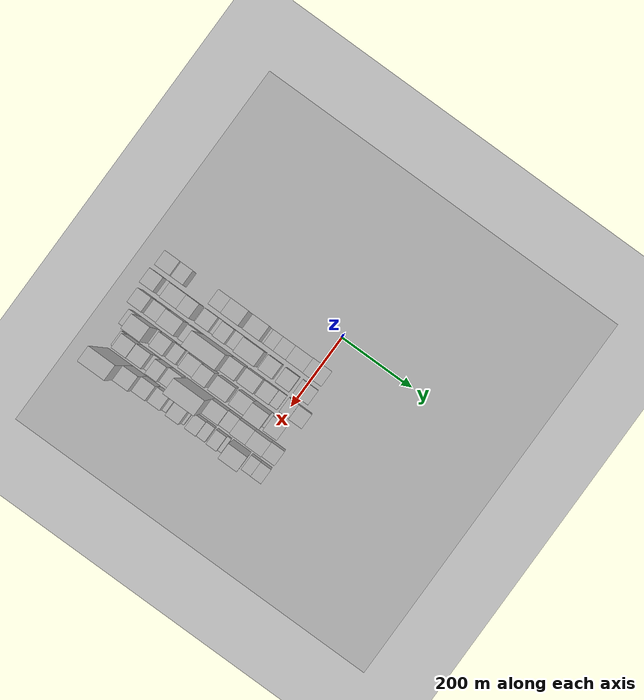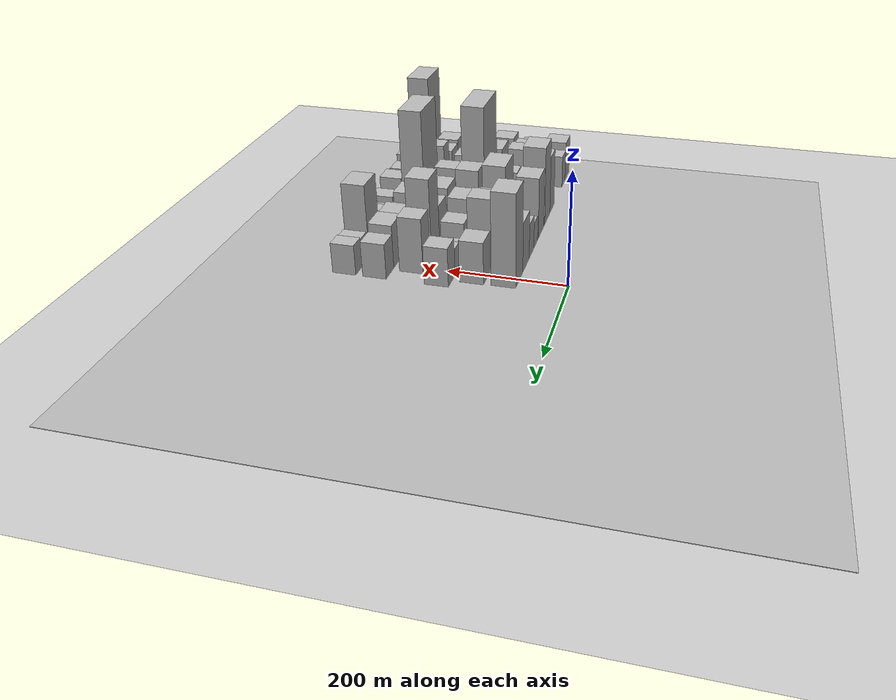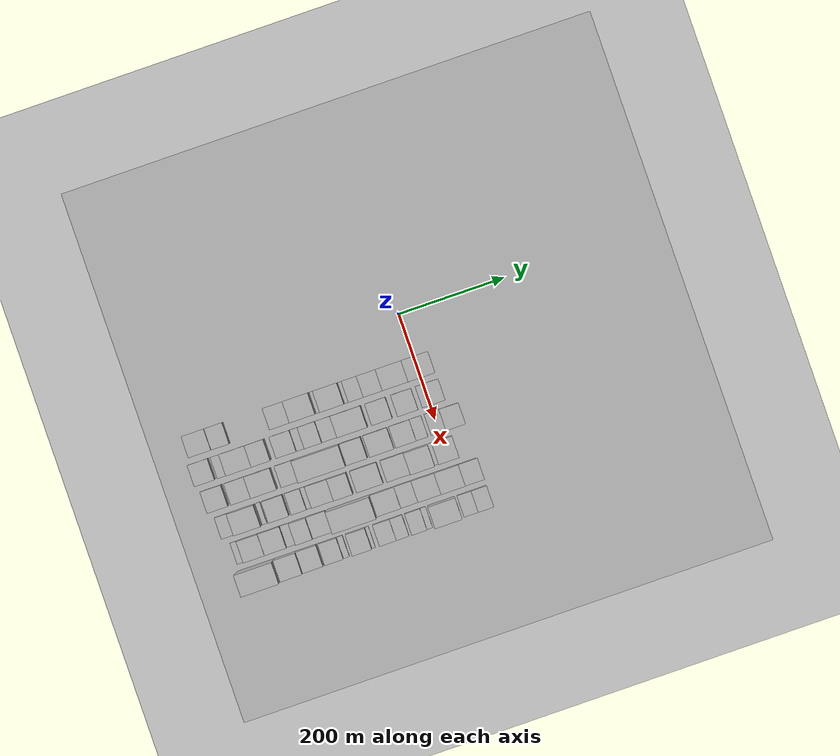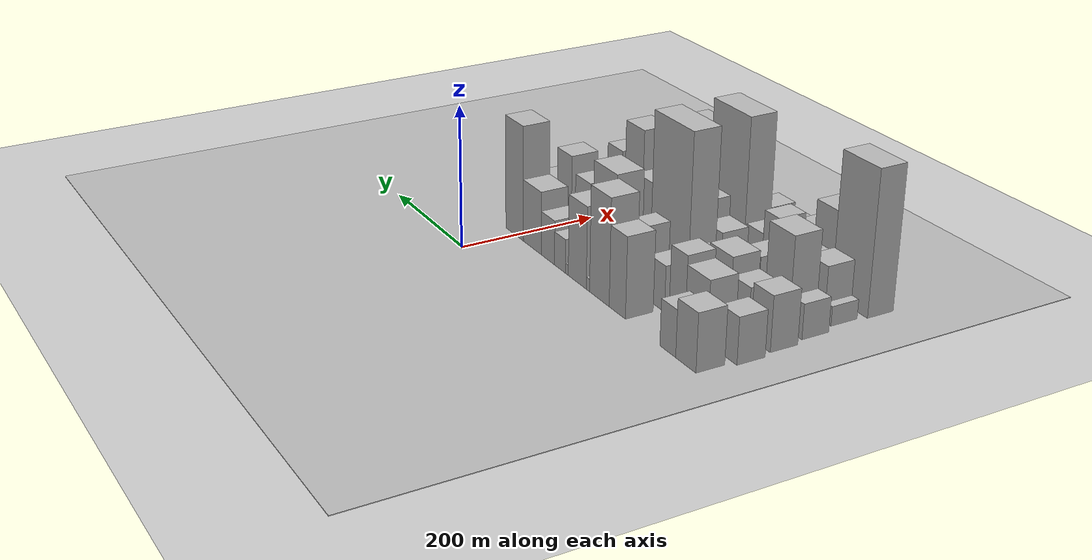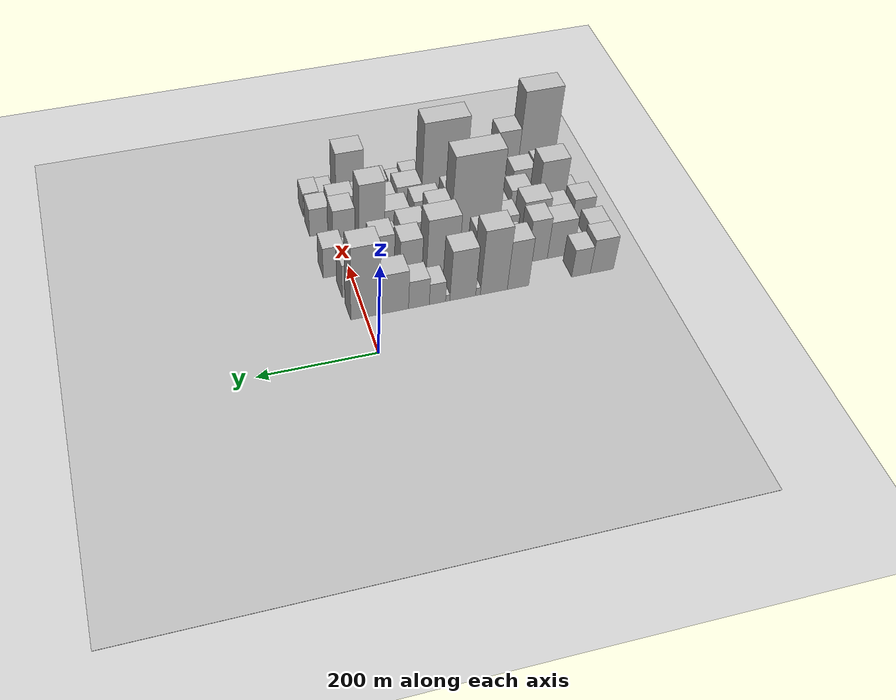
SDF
<sdf version="1.6">
 <world name="default">
  <include><name>ground_plane_1</name><uri>model://HANNAS_ground_plane</uri></include>
  <include>
   <name>ground_plane_2</name>
   <uri>model://HANNAS_ground_plane</uri>
   <pose>100 0 0  0 0 0</pose>
  </include>
  <model name="building_12">
   <static>1</static>
   <pose>100.0000 -414.7524 0 0.000000 0.000000 0.000000</pose>
   <link name="link">
    <pose>0 0 39.00 0 0 0</pose>
    <collision name="collision"><geometry><box><size>40.0000 42.1300 78.0000</size></box></geometry></collision>
    <visual name="visual">
     <cast_shadows>0</cast_shadows>
     <geometry><box><size>40.0000 42.1300 78.0000</size></box></geometry>
     <material>
      <script>
       <uri>model://HANNAS_wall/materials/scripts</uri>
       <uri>model://HANNAS_wall/materials/textures</uri>
       <name>vrc/HANNAS_wall</name>
      </script>
     </material>
    </visual>
   </link>
  </model>
  <model name="building_13">
   <static>1</static>
   <pose>100.0000 -376.7579 0 0.000000 0.000000 0.000000</pose>
   <link name="link">
    <pose>0 0 31.50 0 0 0</pose>
    <collision name="collision"><geometry><box><size>40.0000 33.8590 63.0000</size></box></geometry></collision>
    <visual name="visual">
     <cast_shadows>0</cast_shadows>
     <geometry><box><size>40.0000 33.8590 63.0000</size></box></geometry>
     <material>
      <script>
       <uri>model://HANNAS_wall/materials/scripts</uri>
       <uri>model://HANNAS_wall/materials/textures</uri>
       <name>vrc/HANNAS_wall</name>
      </script>
     </material>
    </visual>
   </link>
  </model>
  <model name="building_14">
   <static>1</static>
   <pose>100.0000 -263.6347 0 0.000000 0.000000 0.000000</pose>
   <link name="link">
    <pose>0 0 55.50 0 0 0</pose>
    <collision name="collision"><geometry><box><size>40.0000 38.1291 111.0000</size></box></geometry></collision>
    <visual name="visual">
     <cast_shadows>0</cast_shadows>
     <geometry><box><size>40.0000 38.1291 111.0000</size></box></geometry>
     <material>
      <script>
       <uri>model://HANNAS_wall/materials/scripts</uri>
       <uri>model://HANNAS_wall/materials/textures</uri>
       <name>vrc/HANNAS_wall</name>
      </script>
     </material>
    </visual>
   </link>
  </model>
  <model name="building_15">
   <static>1</static>
   <pose>100.0000 -220.7925 0 0.000000 0.000000 0.000000</pose>
   <link name="link">
    <pose>0 0 73.50 0 0 0</pose>
    <collision name="collision"><geometry><box><size>40.0000 47.5555 147.0000</size></box></geometry></collision>
    <visual name="visual">
     <cast_shadows>0</cast_shadows>
     <geometry><box><size>40.0000 47.5555 147.0000</size></box></geometry>
     <material>
      <script>
       <uri>model://HANNAS_wall/materials/scripts</uri>
       <uri>model://HANNAS_wall/materials/textures</uri>
       <name>vrc/HANNAS_wall</name>
      </script>
     </material>
    </visual>
   </link>
  </model>
  <model name="building_16">
   <static>1</static>
   <pose>100.0000 -192.9283 0 0.000000 0.000000 0.000000</pose>
   <link name="link">
    <pose>0 0 9.00 0 0 0</pose>
    <collision name="collision"><geometry><box><size>40.0000 8.1729 18.0000</size></box></geometry></collision>
    <visual name="visual">
     <cast_shadows>0</cast_shadows>
     <geometry><box><size>40.0000 8.1729 18.0000</size></box></geometry>
     <material>
      <script>
       <uri>model://HANNAS_wall/materials/scripts</uri>
       <uri>model://HANNAS_wall/materials/textures</uri>
       <name>vrc/HANNAS_wall</name>
      </script>
     </material>
    </visual>
   </link>
  </model>
  <model name="building_17">
   <static>1</static>
   <pose>100.0000 -166.1689 0 0.000000 0.000000 0.000000</pose>
   <link name="link">
    <pose>0 0 57.00 0 0 0</pose>
    <collision name="collision"><geometry><box><size>40.0000 45.3458 114.0000</size></box></geometry></collision>
    <visual name="visual">
     <cast_shadows>0</cast_shadows>
     <geometry><box><size>40.0000 45.3458 114.0000</size></box></geometry>
     <material>
      <script>
       <uri>model://HANNAS_wall/materials/scripts</uri>
       <uri>model://HANNAS_wall/materials/textures</uri>
       <name>vrc/HANNAS_wall</name>
      </script>
     </material>
    </visual>
   </link>
  </model>
  <model name="building_18">
   <static>1</static>
   <pose>100.0000 -139.8257 0 0.000000 0.000000 0.000000</pose>
   <link name="link">
    <pose>0 0 7.50 0 0 0</pose>
    <collision name="collision"><geometry><box><size>40.0000 7.3405 15.0000</size></box></geometry></collision>
    <visual name="visual">
     <cast_shadows>0</cast_shadows>
     <geometry><box><size>40.0000 7.3405 15.0000</size></box></geometry>
     <material>
      <script>
       <uri>model://HANNAS_wall/materials/scripts</uri>
       <uri>model://HANNAS_wall/materials/textures</uri>
       <name>vrc/HANNAS_wall</name>
      </script>
     </material>
    </visual>
   </link>
  </model>
  <model name="building_19">
   <static>1</static>
   <pose>100.0000 -121.9752 0 0.000000 0.000000 0.000000</pose>
   <link name="link">
    <pose>0 0 24.00 0 0 0</pose>
    <collision name="collision"><geometry><box><size>40.0000 28.3605 48.0000</size></box></geometry></collision>
    <visual name="visual">
     <cast_shadows>0</cast_shadows>
     <geometry><box><size>40.0000 28.3605 48.0000</size></box></geometry>
     <material>
      <script>
       <uri>model://HANNAS_wall/materials/scripts</uri>
       <uri>model://HANNAS_wall/materials/textures</uri>
       <name>vrc/HANNAS_wall</name>
      </script>
     </material>
    </visual>
   </link>
  </model>
  <model name="building_20">
   <static>1</static>
   <pose>100.0000 -89.8973 0 0.000000 0.000000 0.000000</pose>
   <link name="link">
    <pose>0 0 31.50 0 0 0</pose>
    <collision name="collision"><geometry><box><size>40.0000 35.7953 63.0000</size></box></geometry></collision>
    <visual name="visual">
     <cast_shadows>0</cast_shadows>
     <geometry><box><size>40.0000 35.7953 63.0000</size></box></geometry>
     <material>
      <script>
       <uri>model://HANNAS_wall/materials/scripts</uri>
       <uri>model://HANNAS_wall/materials/textures</uri>
       <name>vrc/HANNAS_wall</name>
      </script>
     </material>
    </visual>
   </link>
  </model>
  <model name="building_21">
   <static>1</static>
   <pose>100.0000 -47.6946 0 0.000000 0.000000 0.000000</pose>
   <link name="link">
    <pose>0 0 45.00 0 0 0</pose>
    <collision name="collision"><geometry><box><size>40.0000 48.6101 90.0000</size></box></geometry></collision>
    <visual name="visual">
     <cast_shadows>0</cast_shadows>
     <geometry><box><size>40.0000 48.6101 90.0000</size></box></geometry>
     <material>
      <script>
       <uri>model://HANNAS_wall/materials/scripts</uri>
       <uri>model://HANNAS_wall/materials/textures</uri>
       <name>vrc/HANNAS_wall</name>
      </script>
     </material>
    </visual>
   </link>
  </model>
  <model name="building_22">
   <static>1</static>
   <pose>100.0000 1.5828 0 0.000000 0.000000 0.000000</pose>
   <link name="link">
    <pose>0 0 82.50 0 0 0</pose>
    <collision name="collision"><geometry><box><size>40.0000 49.9448 165.0000</size></box></geometry></collision>
    <visual name="visual">
     <cast_shadows>0</cast_shadows>
     <geometry><box><size>40.0000 49.9448 165.0000</size></box></geometry>
     <material>
      <script>
       <uri>model://HANNAS_wall/materials/scripts</uri>
       <uri>model://HANNAS_wall/materials/textures</uri>
       <name>vrc/HANNAS_wall</name>
      </script>
     </material>
    </visual>
   </link>
  </model>
  <model name="building_61">
   <static>1</static>
   <pose>152.0000 -424.2948 0 0.000000 0.000000 0.000000</pose>
   <link name="link">
    <pose>0 0 31.50 0 0 0</pose>
    <collision name="collision"><geometry><box><size>40.0000 37.7740 63.0000</size></box></geometry></collision>
    <visual name="visual">
     <cast_shadows>0</cast_shadows>
     <geometry><box><size>40.0000 37.7740 63.0000</size></box></geometry>
     <material>
      <script>
       <uri>model://HANNAS_wall/materials/scripts</uri>
       <uri>model://HANNAS_wall/materials/textures</uri>
       <name>vrc/HANNAS_wall</name>
      </script>
     </material>
    </visual>
   </link>
  </model>
  <model name="building_62">
   <static>1</static>
   <pose>152.0000 -392.3795 0 0.000000 0.000000 0.000000</pose>
   <link name="link">
    <pose>0 0 16.50 0 0 0</pose>
    <collision name="collision"><geometry><box><size>40.0000 18.0567 33.0000</size></box></geometry></collision>
    <visual name="visual">
     <cast_shadows>0</cast_shadows>
     <geometry><box><size>40.0000 18.0567 33.0000</size></box></geometry>
     <material>
      <script>
       <uri>model://HANNAS_wall/materials/scripts</uri>
       <uri>model://HANNAS_wall/materials/textures</uri>
       <name>vrc/HANNAS_wall</name>
      </script>
     </material>
    </visual>
   </link>
  </model>
  <model name="building_63">
   <static>1</static>
   <pose>152.0000 -359.3087 0 0.000000 0.000000 0.000000</pose>
   <link name="link">
    <pose>0 0 42.00 0 0 0</pose>
    <collision name="collision"><geometry><box><size>40.0000 48.0849 84.0000</size></box></geometry></collision>
    <visual name="visual">
     <cast_shadows>0</cast_shadows>
     <geometry><box><size>40.0000 48.0849 84.0000</size></box></geometry>
     <material>
      <script>
       <uri>model://HANNAS_wall/materials/scripts</uri>
       <uri>model://HANNAS_wall/materials/textures</uri>
       <name>vrc/HANNAS_wall</name>
      </script>
     </material>
    </visual>
   </link>
  </model>
  <model name="building_64">
   <static>1</static>
   <pose>152.0000 -317.4862 0 0.000000 0.000000 0.000000</pose>
   <link name="link">
    <pose>0 0 48.00 0 0 0</pose>
    <collision name="collision"><geometry><box><size>40.0000 35.5601 96.0000</size></box></geometry></collision>
    <visual name="visual">
     <cast_shadows>0</cast_shadows>
     <geometry><box><size>40.0000 35.5601 96.0000</size></box></geometry>
     <material>
      <script>
       <uri>model://HANNAS_wall/materials/scripts</uri>
       <uri>model://HANNAS_wall/materials/textures</uri>
       <name>vrc/HANNAS_wall</name>
      </script>
     </material>
    </visual>
   </link>
  </model>
  <model name="building_65">
   <static>1</static>
   <pose>152.0000 -270.8084 0 0.000000 0.000000 0.000000</pose>
   <link name="link">
    <pose>0 0 31.50 0 0 0</pose>
    <collision name="collision"><geometry><box><size>40.0000 37.7956 63.0000</size></box></geometry></collision>
    <visual name="visual">
     <cast_shadows>0</cast_shadows>
     <geometry><box><size>40.0000 37.7956 63.0000</size></box></geometry>
     <material>
      <script>
       <uri>model://HANNAS_wall/materials/scripts</uri>
       <uri>model://HANNAS_wall/materials/textures</uri>
       <name>vrc/HANNAS_wall</name>
      </script>
     </material>
    </visual>
   </link>
  </model>
  <model name="building_66">
   <static>1</static>
   <pose>152.0000 -243.9761 0 0.000000 0.000000 0.000000</pose>
   <link name="link">
    <pose>0 0 15.00 0 0 0</pose>
    <collision name="collision"><geometry><box><size>40.0000 15.8689 30.0000</size></box></geometry></collision>
    <visual name="visual">
     <cast_shadows>0</cast_shadows>
     <geometry><box><size>40.0000 15.8689 30.0000</size></box></geometry>
     <material>
      <script>
       <uri>model://HANNAS_wall/materials/scripts</uri>
       <uri>model://HANNAS_wall/materials/textures</uri>
       <name>vrc/HANNAS_wall</name>
      </script>
     </material>
    </visual>
   </link>
  </model>
  <model name="building_67">
   <static>1</static>
   <pose>152.0000 -219.7628 0 0.000000 0.000000 0.000000</pose>
   <link name="link">
    <pose>0 0 46.50 0 0 0</pose>
    <collision name="collision"><geometry><box><size>40.0000 32.5576 93.0000</size></box></geometry></collision>
    <visual name="visual">
     <cast_shadows>0</cast_shadows>
     <geometry><box><size>40.0000 32.5576 93.0000</size></box></geometry>
     <material>
      <script>
       <uri>model://HANNAS_wall/materials/scripts</uri>
       <uri>model://HANNAS_wall/materials/textures</uri>
       <name>vrc/HANNAS_wall</name>
      </script>
     </material>
    </visual>
   </link>
  </model>
  <model name="building_68">
   <static>1</static>
   <pose>152.0000 -188.7724 0 0.000000 0.000000 0.000000</pose>
   <link name="link">
    <pose>0 0 25.50 0 0 0</pose>
    <collision name="collision"><geometry><box><size>40.0000 29.4231 51.0000</size></box></geometry></collision>
    <visual name="visual">
     <cast_shadows>0</cast_shadows>
     <geometry><box><size>40.0000 29.4231 51.0000</size></box></geometry>
     <material>
      <script>
       <uri>model://HANNAS_wall/materials/scripts</uri>
       <uri>model://HANNAS_wall/materials/textures</uri>
       <name>vrc/HANNAS_wall</name>
      </script>
     </material>
    </visual>
   </link>
  </model>
  <model name="building_69">
   <static>1</static>
   <pose>152.0000 -145.8640 0 0.000000 0.000000 0.000000</pose>
   <link name="link">
    <pose>0 0 70.50 0 0 0</pose>
    <collision name="collision"><geometry><box><size>40.0000 56.3937 141.0000</size></box></geometry></collision>
    <visual name="visual">
     <cast_shadows>0</cast_shadows>
     <geometry><box><size>40.0000 56.3937 141.0000</size></box></geometry>
     <material>
      <script>
       <uri>model://HANNAS_wall/materials/scripts</uri>
       <uri>model://HANNAS_wall/materials/textures</uri>
       <name>vrc/HANNAS_wall</name>
      </script>
     </material>
    </visual>
   </link>
  </model>
  <model name="building_70">
   <static>1</static>
   <pose>152.0000 -90.4046 0 0.000000 0.000000 0.000000</pose>
   <link name="link">
    <pose>0 0 52.50 0 0 0</pose>
    <collision name="collision"><geometry><box><size>40.0000 38.5252 105.0000</size></box></geometry></collision>
    <visual name="visual">
     <cast_shadows>0</cast_shadows>
     <geometry><box><size>40.0000 38.5252 105.0000</size></box></geometry>
     <material>
      <script>
       <uri>model://HANNAS_wall/materials/scripts</uri>
       <uri>model://HANNAS_wall/materials/textures</uri>
       <name>vrc/HANNAS_wall</name>
      </script>
     </material>
    </visual>
   </link>
  </model>
  <model name="building_71">
   <static>1</static>
   <pose>152.0000 -42.0251 0 0.000000 0.000000 0.000000</pose>
   <link name="link">
    <pose>0 0 63.00 0 0 0</pose>
    <collision name="collision"><geometry><box><size>40.0000 38.2337 126.0000</size></box></geometry></collision>
    <visual name="visual">
     <cast_shadows>0</cast_shadows>
     <geometry><box><size>40.0000 38.2337 126.0000</size></box></geometry>
     <material>
      <script>
       <uri>model://HANNAS_wall/materials/scripts</uri>
       <uri>model://HANNAS_wall/materials/textures</uri>
       <name>vrc/HANNAS_wall</name>
      </script>
     </material>
    </visual>
   </link>
  </model>
  <model name="building_72">
   <static>1</static>
   <pose>152.0000 6.5891 0 0.000000 0.000000 0.000000</pose>
   <link name="link">
    <pose>0 0 37.50 0 0 0</pose>
    <collision name="collision"><geometry><box><size>40.0000 42.9946 75.0000</size></box></geometry></collision>
    <visual name="visual">
     <cast_shadows>0</cast_shadows>
     <geometry><box><size>40.0000 42.9946 75.0000</size></box></geometry>
     <material>
      <script>
       <uri>model://HANNAS_wall/materials/scripts</uri>
       <uri>model://HANNAS_wall/materials/textures</uri>
       <name>vrc/HANNAS_wall</name>
      </script>
     </material>
    </visual>
   </link>
  </model>
  <model name="building_108">
   <static>1</static>
   <pose>204.0000 -417.3247 0 0.000000 0.000000 0.000000</pose>
   <link name="link">
    <pose>0 0 37.50 0 0 0</pose>
    <collision name="collision"><geometry><box><size>40.0000 39.0101 75.0000</size></box></geometry></collision>
    <visual name="visual">
     <cast_shadows>0</cast_shadows>
     <geometry><box><size>40.0000 39.0101 75.0000</size></box></geometry>
     <material>
      <script>
       <uri>model://HANNAS_wall/materials/scripts</uri>
       <uri>model://HANNAS_wall/materials/textures</uri>
       <name>vrc/HANNAS_wall</name>
      </script>
     </material>
    </visual>
   </link>
  </model>
  <model name="building_109">
   <static>1</static>
   <pose>204.0000 -373.7194 0 0.000000 0.000000 0.000000</pose>
   <link name="link">
    <pose>0 0 33.00 0 0 0</pose>
    <collision name="collision"><geometry><box><size>40.0000 38.2007 66.0000</size></box></geometry></collision>
    <visual name="visual">
     <cast_shadows>0</cast_shadows>
     <geometry><box><size>40.0000 38.2007 66.0000</size></box></geometry>
     <material>
      <script>
       <uri>model://HANNAS_wall/materials/scripts</uri>
       <uri>model://HANNAS_wall/materials/textures</uri>
       <name>vrc/HANNAS_wall</name>
      </script>
     </material>
    </visual>
   </link>
  </model>
  <model name="building_110">
   <static>1</static>
   <pose>204.0000 -330.2801 0 0.000000 0.000000 0.000000</pose>
   <link name="link">
    <pose>0 0 45.00 0 0 0</pose>
    <collision name="collision"><geometry><box><size>40.0000 48.6779 90.0000</size></box></geometry></collision>
    <visual name="visual">
     <cast_shadows>0</cast_shadows>
     <geometry><box><size>40.0000 48.6779 90.0000</size></box></geometry>
     <material>
      <script>
       <uri>model://HANNAS_wall/materials/scripts</uri>
       <uri>model://HANNAS_wall/materials/textures</uri>
       <name>vrc/HANNAS_wall</name>
      </script>
     </material>
    </visual>
   </link>
  </model>
  <model name="building_111">
   <static>1</static>
   <pose>204.0000 -280.1822 0 0.000000 0.000000 0.000000</pose>
   <link name="link">
    <pose>0 0 33.00 0 0 0</pose>
    <collision name="collision"><geometry><box><size>40.0000 35.5178 66.0000</size></box></geometry></collision>
    <visual name="visual">
     <cast_shadows>0</cast_shadows>
     <geometry><box><size>40.0000 35.5178 66.0000</size></box></geometry>
     <material>
      <script>
       <uri>model://HANNAS_wall/materials/scripts</uri>
       <uri>model://HANNAS_wall/materials/textures</uri>
       <name>vrc/HANNAS_wall</name>
      </script>
     </material>
    </visual>
   </link>
  </model>
  <model name="building_112">
   <static>1</static>
   <pose>204.0000 -218.7964 0 0.000000 0.000000 0.000000</pose>
   <link name="link">
    <pose>0 0 109.50 0 0 0</pose>
    <collision name="collision"><geometry><box><size>40.0000 87.2537 219.0000</size></box></geometry></collision>
    <visual name="visual">
     <cast_shadows>0</cast_shadows>
     <geometry><box><size>40.0000 87.2537 219.0000</size></box></geometry>
     <material>
      <script>
       <uri>model://HANNAS_wall/materials/scripts</uri>
       <uri>model://HANNAS_wall/materials/textures</uri>
       <name>vrc/HANNAS_wall</name>
      </script>
     </material>
    </visual>
   </link>
  </model>
  <model name="building_113">
   <static>1</static>
   <pose>204.0000 -155.4561 0 0.000000 0.000000 0.000000</pose>
   <link name="link">
    <pose>0 0 60.00 0 0 0</pose>
    <collision name="collision"><geometry><box><size>40.0000 39.4269 120.0000</size></box></geometry></collision>
    <visual name="visual">
     <cast_shadows>0</cast_shadows>
     <geometry><box><size>40.0000 39.4269 120.0000</size></box></geometry>
     <material>
      <script>
       <uri>model://HANNAS_wall/materials/scripts</uri>
       <uri>model://HANNAS_wall/materials/textures</uri>
       <name>vrc/HANNAS_wall</name>
      </script>
     </material>
    </visual>
   </link>
  </model>
  <model name="building_114">
   <static>1</static>
   <pose>204.0000 -108.9257 0 0.000000 0.000000 0.000000</pose>
   <link name="link">
    <pose>0 0 45.00 0 0 0</pose>
    <collision name="collision"><geometry><box><size>40.0000 45.6339 90.0000</size></box></geometry></collision>
    <visual name="visual">
     <cast_shadows>0</cast_shadows>
     <geometry><box><size>40.0000 45.6339 90.0000</size></box></geometry>
     <material>
      <script>
       <uri>model://HANNAS_wall/materials/scripts</uri>
       <uri>model://HANNAS_wall/materials/textures</uri>
       <name>vrc/HANNAS_wall</name>
      </script>
     </material>
    </visual>
   </link>
  </model>
  <model name="building_115">
   <static>1</static>
   <pose>204.0000 -63.7250 0 0.000000 0.000000 0.000000</pose>
   <link name="link">
    <pose>0 0 33.00 0 0 0</pose>
    <collision name="collision"><geometry><box><size>40.0000 38.7676 66.0000</size></box></geometry></collision>
    <visual name="visual">
     <cast_shadows>0</cast_shadows>
     <geometry><box><size>40.0000 38.7676 66.0000</size></box></geometry>
     <material>
      <script>
       <uri>model://HANNAS_wall/materials/scripts</uri>
       <uri>model://HANNAS_wall/materials/textures</uri>
       <name>vrc/HANNAS_wall</name>
      </script>
     </material>
    </visual>
   </link>
  </model>
  <model name="building_116">
   <static>1</static>
   <pose>204.0000 -33.2406 0 0.000000 0.000000 0.000000</pose>
   <link name="link">
    <pose>0 0 19.50 0 0 0</pose>
    <collision name="collision"><geometry><box><size>40.0000 22.2011 39.0000</size></box></geometry></collision>
    <visual name="visual">
     <cast_shadows>0</cast_shadows>
     <geometry><box><size>40.0000 22.2011 39.0000</size></box></geometry>
     <material>
      <script>
       <uri>model://HANNAS_wall/materials/scripts</uri>
       <uri>model://HANNAS_wall/materials/textures</uri>
       <name>vrc/HANNAS_wall</name>
      </script>
     </material>
    </visual>
   </link>
  </model>
  <model name="building_117">
   <static>1</static>
   <pose>204.0000 -2.3273 0 0.000000 0.000000 0.000000</pose>
   <link name="link">
    <pose>0 0 24.00 0 0 0</pose>
    <collision name="collision"><geometry><box><size>40.0000 27.6255 48.0000</size></box></geometry></collision>
    <visual name="visual">
     <cast_shadows>0</cast_shadows>
     <geometry><box><size>40.0000 27.6255 48.0000</size></box></geometry>
     <material>
      <script>
       <uri>model://HANNAS_wall/materials/scripts</uri>
       <uri>model://HANNAS_wall/materials/textures</uri>
       <name>vrc/HANNAS_wall</name>
      </script>
     </material>
    </visual>
   </link>
  </model>
  <model name="building_118">
   <static>1</static>
   <pose>204.0000 29.8373 0 0.000000 0.000000 0.000000</pose>
   <link name="link">
    <pose>0 0 34.50 0 0 0</pose>
    <collision name="collision"><geometry><box><size>40.0000 36.7036 69.0000</size></box></geometry></collision>
    <visual name="visual">
     <cast_shadows>0</cast_shadows>
     <geometry><box><size>40.0000 36.7036 69.0000</size></box></geometry>
     <material>
      <script>
       <uri>model://HANNAS_wall/materials/scripts</uri>
       <uri>model://HANNAS_wall/materials/textures</uri>
       <name>vrc/HANNAS_wall</name>
      </script>
     </material>
    </visual>
   </link>
  </model>
  <model name="building_154">
   <static>1</static>
   <pose>256.0000 -416.1713 0 0.000000 0.000000 0.000000</pose>
   <link name="link">
    <pose>0 0 24.00 0 0 0</pose>
    <collision name="collision"><geometry><box><size>40.0000 25.7418 48.0000</size></box></geometry></collision>
    <visual name="visual">
     <cast_shadows>0</cast_shadows>
     <geometry><box><size>40.0000 25.7418 48.0000</size></box></geometry>
     <material>
      <script>
       <uri>model://HANNAS_wall/materials/scripts</uri>
       <uri>model://HANNAS_wall/materials/textures</uri>
       <name>vrc/HANNAS_wall</name>
      </script>
     </material>
    </visual>
   </link>
  </model>
  <model name="building_155">
   <static>1</static>
   <pose>256.0000 -378.1142 0 0.000000 0.000000 0.000000</pose>
   <link name="link">
    <pose>0 0 63.00 0 0 0</pose>
    <collision name="collision"><geometry><box><size>40.0000 50.3724 126.0000</size></box></geometry></collision>
    <visual name="visual">
     <cast_shadows>0</cast_shadows>
     <geometry><box><size>40.0000 50.3724 126.0000</size></box></geometry>
     <material>
      <script>
       <uri>model://HANNAS_wall/materials/scripts</uri>
       <uri>model://HANNAS_wall/materials/textures</uri>
       <name>vrc/HANNAS_wall</name>
      </script>
     </material>
    </visual>
   </link>
  </model>
  <model name="building_156">
   <static>1</static>
   <pose>256.0000 -348.5246 0 0.000000 0.000000 0.000000</pose>
   <link name="link">
    <pose>0 0 10.50 0 0 0</pose>
    <collision name="collision"><geometry><box><size>40.0000 8.8067 21.0000</size></box></geometry></collision>
    <visual name="visual">
     <cast_shadows>0</cast_shadows>
     <geometry><box><size>40.0000 8.8067 21.0000</size></box></geometry>
     <material>
      <script>
       <uri>model://HANNAS_wall/materials/scripts</uri>
       <uri>model://HANNAS_wall/materials/textures</uri>
       <name>vrc/HANNAS_wall</name>
      </script>
     </material>
    </visual>
   </link>
  </model>
  <model name="building_157">
   <static>1</static>
   <pose>256.0000 -320.8390 0 0.000000 0.000000 0.000000</pose>
   <link name="link">
    <pose>0 0 36.00 0 0 0</pose>
    <collision name="collision"><geometry><box><size>40.0000 38.5646 72.0000</size></box></geometry></collision>
    <visual name="visual">
     <cast_shadows>0</cast_shadows>
     <geometry><box><size>40.0000 38.5646 72.0000</size></box></geometry>
     <material>
      <script>
       <uri>model://HANNAS_wall/materials/scripts</uri>
       <uri>model://HANNAS_wall/materials/textures</uri>
       <name>vrc/HANNAS_wall</name>
      </script>
     </material>
    </visual>
   </link>
  </model>
  <model name="building_158">
   <static>1</static>
   <pose>256.0000 -283.3070 0 0.000000 0.000000 0.000000</pose>
   <link name="link">
    <pose>0 0 25.50 0 0 0</pose>
    <collision name="collision"><geometry><box><size>40.0000 28.4994 51.0000</size></box></geometry></collision>
    <visual name="visual">
     <cast_shadows>0</cast_shadows>
     <geometry><box><size>40.0000 28.4994 51.0000</size></box></geometry>
     <material>
      <script>
       <uri>model://HANNAS_wall/materials/scripts</uri>
       <uri>model://HANNAS_wall/materials/textures</uri>
       <name>vrc/HANNAS_wall</name>
      </script>
     </material>
    </visual>
   </link>
  </model>
  <model name="building_159">
   <static>1</static>
   <pose>256.0000 -264.0469 0 0.000000 0.000000 0.000000</pose>
   <link name="link">
    <pose>0 0 10.50 0 0 0</pose>
    <collision name="collision"><geometry><box><size>40.0000 10.0209 21.0000</size></box></geometry></collision>
    <visual name="visual">
     <cast_shadows>0</cast_shadows>
     <geometry><box><size>40.0000 10.0209 21.0000</size></box></geometry>
     <material>
      <script>
       <uri>model://HANNAS_wall/materials/scripts</uri>
       <uri>model://HANNAS_wall/materials/textures</uri>
       <name>vrc/HANNAS_wall</name>
      </script>
     </material>
    </visual>
   </link>
  </model>
  <model name="building_160">
   <static>1</static>
   <pose>256.0000 -238.0964 0 0.000000 0.000000 0.000000</pose>
   <link name="link">
    <pose>0 0 36.00 0 0 0</pose>
    <collision name="collision"><geometry><box><size>40.0000 41.8801 72.0000</size></box></geometry></collision>
    <visual name="visual">
     <cast_shadows>0</cast_shadows>
     <geometry><box><size>40.0000 41.8801 72.0000</size></box></geometry>
     <material>
      <script>
       <uri>model://HANNAS_wall/materials/scripts</uri>
       <uri>model://HANNAS_wall/materials/textures</uri>
       <name>vrc/HANNAS_wall</name>
      </script>
     </material>
    </visual>
   </link>
  </model>
  <model name="building_161">
   <static>1</static>
   <pose>256.0000 -199.1491 0 0.000000 0.000000 0.000000</pose>
   <link name="link">
    <pose>0 0 49.50 0 0 0</pose>
    <collision name="collision"><geometry><box><size>40.0000 36.0144 99.0000</size></box></geometry></collision>
    <visual name="visual">
     <cast_shadows>0</cast_shadows>
     <geometry><box><size>40.0000 36.0144 99.0000</size></box></geometry>
     <material>
      <script>
       <uri>model://HANNAS_wall/materials/scripts</uri>
       <uri>model://HANNAS_wall/materials/textures</uri>
       <name>vrc/HANNAS_wall</name>
      </script>
     </material>
    </visual>
   </link>
  </model>
  <model name="building_162">
   <static>1</static>
   <pose>256.0000 -149.3006 0 0.000000 0.000000 0.000000</pose>
   <link name="link">
    <pose>0 0 43.50 0 0 0</pose>
    <collision name="collision"><geometry><box><size>40.0000 49.6825 87.0000</size></box></geometry></collision>
    <visual name="visual">
     <cast_shadows>0</cast_shadows>
     <geometry><box><size>40.0000 49.6825 87.0000</size></box></geometry>
     <material>
      <script>
       <uri>model://HANNAS_wall/materials/scripts</uri>
       <uri>model://HANNAS_wall/materials/textures</uri>
       <name>vrc/HANNAS_wall</name>
      </script>
     </material>
    </visual>
   </link>
  </model>
  <model name="building_163">
   <static>1</static>
   <pose>256.0000 -95.3129 0 0.000000 0.000000 0.000000</pose>
   <link name="link">
    <pose>0 0 39.00 0 0 0</pose>
    <collision name="collision"><geometry><box><size>40.0000 44.2929 78.0000</size></box></geometry></collision>
    <visual name="visual">
     <cast_shadows>0</cast_shadows>
     <geometry><box><size>40.0000 44.2929 78.0000</size></box></geometry>
     <material>
      <script>
       <uri>model://HANNAS_wall/materials/scripts</uri>
       <uri>model://HANNAS_wall/materials/textures</uri>
       <name>vrc/HANNAS_wall</name>
      </script>
     </material>
    </visual>
   </link>
  </model>
  <model name="building_164">
   <static>1</static>
   <pose>256.0000 -50.4108 0 0.000000 0.000000 0.000000</pose>
   <link name="link">
    <pose>0 0 73.50 0 0 0</pose>
    <collision name="collision"><geometry><box><size>40.0000 45.5113 147.0000</size></box></geometry></collision>
    <visual name="visual">
     <cast_shadows>0</cast_shadows>
     <geometry><box><size>40.0000 45.5113 147.0000</size></box></geometry>
     <material>
      <script>
       <uri>model://HANNAS_wall/materials/scripts</uri>
       <uri>model://HANNAS_wall/materials/textures</uri>
       <name>vrc/HANNAS_wall</name>
      </script>
     </material>
    </visual>
   </link>
  </model>
  <model name="building_165">
   <static>1</static>
   <pose>256.0000 -24.0487 0 0.000000 0.000000 0.000000</pose>
   <link name="link">
    <pose>0 0 9.00 0 0 0</pose>
    <collision name="collision"><geometry><box><size>40.0000 7.2129 18.0000</size></box></geometry></collision>
    <visual name="visual">
     <cast_shadows>0</cast_shadows>
     <geometry><box><size>40.0000 7.2129 18.0000</size></box></geometry>
     <material>
      <script>
       <uri>model://HANNAS_wall/materials/scripts</uri>
       <uri>model://HANNAS_wall/materials/textures</uri>
       <name>vrc/HANNAS_wall</name>
      </script>
     </material>
    </visual>
   </link>
  </model>
  <model name="building_166">
   <static>1</static>
   <pose>256.0000 -1.1761 0 0.000000 0.000000 0.000000</pose>
   <link name="link">
    <pose>0 0 49.50 0 0 0</pose>
    <collision name="collision"><geometry><box><size>40.0000 38.5323 99.0000</size></box></geometry></collision>
    <visual name="visual">
     <cast_shadows>0</cast_shadows>
     <geometry><box><size>40.0000 38.5323 99.0000</size></box></geometry>
     <material>
      <script>
       <uri>model://HANNAS_wall/materials/scripts</uri>
       <uri>model://HANNAS_wall/materials/textures</uri>
       <name>vrc/HANNAS_wall</name>
      </script>
     </material>
    </visual>
   </link>
  </model>
  <model name="building_207">
   <static>1</static>
   <pose>308.0000 -411.4995 0 0.000000 0.000000 0.000000</pose>
   <link name="link">
    <pose>0 0 13.50 0 0 0</pose>
    <collision name="collision"><geometry><box><size>40.0000 13.0505 27.0000</size></box></geometry></collision>
    <visual name="visual">
     <cast_shadows>0</cast_shadows>
     <geometry><box><size>40.0000 13.0505 27.0000</size></box></geometry>
     <material>
      <script>
       <uri>model://HANNAS_wall/materials/scripts</uri>
       <uri>model://HANNAS_wall/materials/textures</uri>
       <name>vrc/HANNAS_wall</name>
      </script>
     </material>
    </visual>
   </link>
  </model>
  <model name="building_208">
   <static>1</static>
   <pose>308.0000 -385.0826 0 0.000000 0.000000 0.000000</pose>
   <link name="link">
    <pose>0 0 37.50 0 0 0</pose>
    <collision name="collision"><geometry><box><size>40.0000 39.7833 75.0000</size></box></geometry></collision>
    <visual name="visual">
     <cast_shadows>0</cast_shadows>
     <geometry><box><size>40.0000 39.7833 75.0000</size></box></geometry>
     <material>
      <script>
       <uri>model://HANNAS_wall/materials/scripts</uri>
       <uri>model://HANNAS_wall/materials/textures</uri>
       <name>vrc/HANNAS_wall</name>
      </script>
     </material>
    </visual>
   </link>
  </model>
  <model name="building_209">
   <static>1</static>
   <pose>308.0000 -344.7418 0 0.000000 0.000000 0.000000</pose>
   <link name="link">
    <pose>0 0 34.50 0 0 0</pose>
    <collision name="collision"><geometry><box><size>40.0000 40.8983 69.0000</size></box></geometry></collision>
    <visual name="visual">
     <cast_shadows>0</cast_shadows>
     <geometry><box><size>40.0000 40.8983 69.0000</size></box></geometry>
     <material>
      <script>
       <uri>model://HANNAS_wall/materials/scripts</uri>
       <uri>model://HANNAS_wall/materials/textures</uri>
       <name>vrc/HANNAS_wall</name>
      </script>
     </material>
    </visual>
   </link>
  </model>
  <model name="building_210">
   <static>1</static>
   <pose>308.0000 -315.3176 0 0.000000 0.000000 0.000000</pose>
   <link name="link">
    <pose>0 0 15.00 0 0 0</pose>
    <collision name="collision"><geometry><box><size>40.0000 17.9500 30.0000</size></box></geometry></collision>
    <visual name="visual">
     <cast_shadows>0</cast_shadows>
     <geometry><box><size>40.0000 17.9500 30.0000</size></box></geometry>
     <material>
      <script>
       <uri>model://HANNAS_wall/materials/scripts</uri>
       <uri>model://HANNAS_wall/materials/textures</uri>
       <name>vrc/HANNAS_wall</name>
      </script>
     </material>
    </visual>
   </link>
  </model>
  <model name="building_211">
   <static>1</static>
   <pose>308.0000 -290.5071 0 0.000000 0.000000 0.000000</pose>
   <link name="link">
    <pose>0 0 49.50 0 0 0</pose>
    <collision name="collision"><geometry><box><size>40.0000 31.6709 99.0000</size></box></geometry></collision>
    <visual name="visual">
     <cast_shadows>0</cast_shadows>
     <geometry><box><size>40.0000 31.6709 99.0000</size></box></geometry>
     <material>
      <script>
       <uri>model://HANNAS_wall/materials/scripts</uri>
       <uri>model://HANNAS_wall/materials/textures</uri>
       <name>vrc/HANNAS_wall</name>
      </script>
     </material>
    </visual>
   </link>
  </model>
  <model name="building_212">
   <static>1</static>
   <pose>308.0000 -256.4860 0 0.000000 0.000000 0.000000</pose>
   <link name="link">
    <pose>0 0 33.00 0 0 0</pose>
    <collision name="collision"><geometry><box><size>40.0000 36.3713 66.0000</size></box></geometry></collision>
    <visual name="visual">
     <cast_shadows>0</cast_shadows>
     <geometry><box><size>40.0000 36.3713 66.0000</size></box></geometry>
     <material>
      <script>
       <uri>model://HANNAS_wall/materials/scripts</uri>
       <uri>model://HANNAS_wall/materials/textures</uri>
       <name>vrc/HANNAS_wall</name>
      </script>
     </material>
    </visual>
   </link>
  </model>
  <model name="building_213">
   <static>1</static>
   <pose>308.0000 -194.8196 0 0.000000 0.000000 0.000000</pose>
   <link name="link">
    <pose>0 0 105.00 0 0 0</pose>
    <collision name="collision"><geometry><box><size>40.0000 80.9613 210.0000</size></box></geometry></collision>
    <visual name="visual">
     <cast_shadows>0</cast_shadows>
     <geometry><box><size>40.0000 80.9613 210.0000</size></box></geometry>
     <material>
      <script>
       <uri>model://HANNAS_wall/materials/scripts</uri>
       <uri>model://HANNAS_wall/materials/textures</uri>
       <name>vrc/HANNAS_wall</name>
      </script>
     </material>
    </visual>
   </link>
  </model>
  <model name="building_214">
   <static>1</static>
   <pose>308.0000 -131.7458 0 0.000000 0.000000 0.000000</pose>
   <link name="link">
    <pose>0 0 39.00 0 0 0</pose>
    <collision name="collision"><geometry><box><size>40.0000 45.1864 78.0000</size></box></geometry></collision>
    <visual name="visual">
     <cast_shadows>0</cast_shadows>
     <geometry><box><size>40.0000 45.1864 78.0000</size></box></geometry>
     <material>
      <script>
       <uri>model://HANNAS_wall/materials/scripts</uri>
       <uri>model://HANNAS_wall/materials/textures</uri>
       <name>vrc/HANNAS_wall</name>
      </script>
     </material>
    </visual>
   </link>
  </model>
  <model name="building_215">
   <static>1</static>
   <pose>308.0000 -93.1461 0 0.000000 0.000000 0.000000</pose>
   <link name="link">
    <pose>0 0 30.00 0 0 0</pose>
    <collision name="collision"><geometry><box><size>40.0000 32.0130 60.0000</size></box></geometry></collision>
    <visual name="visual">
     <cast_shadows>0</cast_shadows>
     <geometry><box><size>40.0000 32.0130 60.0000</size></box></geometry>
     <material>
      <script>
       <uri>model://HANNAS_wall/materials/scripts</uri>
       <uri>model://HANNAS_wall/materials/textures</uri>
       <name>vrc/HANNAS_wall</name>
      </script>
     </material>
    </visual>
   </link>
  </model>
  <model name="building_216">
   <static>1</static>
   <pose>308.0000 -55.4847 0 0.000000 0.000000 0.000000</pose>
   <link name="link">
    <pose>0 0 37.50 0 0 0</pose>
    <collision name="collision"><geometry><box><size>40.0000 43.3097 75.0000</size></box></geometry></collision>
    <visual name="visual">
     <cast_shadows>0</cast_shadows>
     <geometry><box><size>40.0000 43.3097 75.0000</size></box></geometry>
     <material>
      <script>
       <uri>model://HANNAS_wall/materials/scripts</uri>
       <uri>model://HANNAS_wall/materials/textures</uri>
       <name>vrc/HANNAS_wall</name>
      </script>
     </material>
    </visual>
   </link>
  </model>
  <model name="building_217">
   <static>1</static>
   <pose>308.0000 -11.0088 0 0.000000 0.000000 0.000000</pose>
   <link name="link">
    <pose>0 0 39.00 0 0 0</pose>
    <collision name="collision"><geometry><box><size>40.0000 45.6421 78.0000</size></box></geometry></collision>
    <visual name="visual">
     <cast_shadows>0</cast_shadows>
     <geometry><box><size>40.0000 45.6421 78.0000</size></box></geometry>
     <material>
      <script>
       <uri>model://HANNAS_wall/materials/scripts</uri>
       <uri>model://HANNAS_wall/materials/textures</uri>
       <name>vrc/HANNAS_wall</name>
      </script>
     </material>
    </visual>
   </link>
  </model>
  <model name="building_218">
   <static>1</static>
   <pose>308.0000 29.9184 0 0.000000 0.000000 0.000000</pose>
   <link name="link">
    <pose>0 0 31.50 0 0 0</pose>
    <collision name="collision"><geometry><box><size>40.0000 36.2124 63.0000</size></box></geometry></collision>
    <visual name="visual">
     <cast_shadows>0</cast_shadows>
     <geometry><box><size>40.0000 36.2124 63.0000</size></box></geometry>
     <material>
      <script>
       <uri>model://HANNAS_wall/materials/scripts</uri>
       <uri>model://HANNAS_wall/materials/textures</uri>
       <name>vrc/HANNAS_wall</name>
      </script>
     </material>
    </visual>
   </link>
  </model>
  <model name="building_255">
   <static>1</static>
   <pose>360.0000 -387.8253 0 0.000000 0.000000 0.000000</pose>
   <link name="link">
    <pose>0 0 99.00 0 0 0</pose>
    <collision name="collision"><geometry><box><size>40.0000 70.3065 198.0000</size></box></geometry></collision>
    <visual name="visual">
     <cast_shadows>0</cast_shadows>
     <geometry><box><size>40.0000 70.3065 198.0000</size></box></geometry>
     <material>
      <script>
       <uri>model://HANNAS_wall/materials/scripts</uri>
       <uri>model://HANNAS_wall/materials/textures</uri>
       <name>vrc/HANNAS_wall</name>
      </script>
     </material>
    </visual>
   </link>
  </model>
  <model name="building_256">
   <static>1</static>
   <pose>360.0000 -332.0346 0 0.000000 0.000000 0.000000</pose>
   <link name="link">
    <pose>0 0 58.50 0 0 0</pose>
    <collision name="collision"><geometry><box><size>40.0000 41.2749 117.0000</size></box></geometry></collision>
    <visual name="visual">
     <cast_shadows>0</cast_shadows>
     <geometry><box><size>40.0000 41.2749 117.0000</size></box></geometry>
     <material>
      <script>
       <uri>model://HANNAS_wall/materials/scripts</uri>
       <uri>model://HANNAS_wall/materials/textures</uri>
       <name>vrc/HANNAS_wall</name>
      </script>
     </material>
    </visual>
   </link>
  </model>
  <model name="building_257">
   <static>1</static>
   <pose>360.0000 -292.3532 0 0.000000 0.000000 0.000000</pose>
   <link name="link">
    <pose>0 0 37.50 0 0 0</pose>
    <collision name="collision"><geometry><box><size>40.0000 38.0878 75.0000</size></box></geometry></collision>
    <visual name="visual">
     <cast_shadows>0</cast_shadows>
     <geometry><box><size>40.0000 38.0878 75.0000</size></box></geometry>
     <material>
      <script>
       <uri>model://HANNAS_wall/materials/scripts</uri>
       <uri>model://HANNAS_wall/materials/textures</uri>
       <name>vrc/HANNAS_wall</name>
      </script>
     </material>
    </visual>
   </link>
  </model>
  <model name="building_258">
   <static>1</static>
   <pose>360.0000 -252.8329 0 0.000000 0.000000 0.000000</pose>
   <link name="link">
    <pose>0 0 31.50 0 0 0</pose>
    <collision name="collision"><geometry><box><size>40.0000 34.9529 63.0000</size></box></geometry></collision>
    <visual name="visual">
     <cast_shadows>0</cast_shadows>
     <geometry><box><size>40.0000 34.9529 63.0000</size></box></geometry>
     <material>
      <script>
       <uri>model://HANNAS_wall/materials/scripts</uri>
       <uri>model://HANNAS_wall/materials/textures</uri>
       <name>vrc/HANNAS_wall</name>
      </script>
     </material>
    </visual>
   </link>
  </model>
  <model name="building_259">
   <static>1</static>
   <pose>360.0000 -229.9152 0 0.000000 0.000000 0.000000</pose>
   <link name="link">
    <pose>0 0 13.50 0 0 0</pose>
    <collision name="collision"><geometry><box><size>40.0000 10.8825 27.0000</size></box></geometry></collision>
    <visual name="visual">
     <cast_shadows>0</cast_shadows>
     <geometry><box><size>40.0000 10.8825 27.0000</size></box></geometry>
     <material>
      <script>
       <uri>model://HANNAS_wall/materials/scripts</uri>
       <uri>model://HANNAS_wall/materials/textures</uri>
       <name>vrc/HANNAS_wall</name>
      </script>
     </material>
    </visual>
   </link>
  </model>
  <model name="building_260">
   <static>1</static>
   <pose>360.0000 -200.2231 0 0.000000 0.000000 0.000000</pose>
   <link name="link">
    <pose>0 0 34.50 0 0 0</pose>
    <collision name="collision"><geometry><box><size>40.0000 36.5017 69.0000</size></box></geometry></collision>
    <visual name="visual">
     <cast_shadows>0</cast_shadows>
     <geometry><box><size>40.0000 36.5017 69.0000</size></box></geometry>
     <material>
      <script>
       <uri>model://HANNAS_wall/materials/scripts</uri>
       <uri>model://HANNAS_wall/materials/textures</uri>
       <name>vrc/HANNAS_wall</name>
      </script>
     </material>
    </visual>
   </link>
  </model>
  <model name="building_261">
   <static>1</static>
   <pose>360.0000 -178.6959 0 0.000000 0.000000 0.000000</pose>
   <link name="link">
    <pose>0 0 7.50 0 0 0</pose>
    <collision name="collision"><geometry><box><size>40.0000 6.5528 15.0000</size></box></geometry></collision>
    <visual name="visual">
     <cast_shadows>0</cast_shadows>
     <geometry><box><size>40.0000 6.5528 15.0000</size></box></geometry>
     <material>
      <script>
       <uri>model://HANNAS_wall/materials/scripts</uri>
       <uri>model://HANNAS_wall/materials/textures</uri>
       <name>vrc/HANNAS_wall</name>
      </script>
     </material>
    </visual>
   </link>
  </model>
  <model name="building_262">
   <static>1</static>
   <pose>360.0000 -151.5653 0 0.000000 0.000000 0.000000</pose>
   <link name="link">
    <pose>0 0 27.00 0 0 0</pose>
    <collision name="collision"><geometry><box><size>40.0000 31.7084 54.0000</size></box></geometry></collision>
    <visual name="visual">
     <cast_shadows>0</cast_shadows>
     <geometry><box><size>40.0000 31.7084 54.0000</size></box></geometry>
     <material>
      <script>
       <uri>model://HANNAS_wall/materials/scripts</uri>
       <uri>model://HANNAS_wall/materials/textures</uri>
       <name>vrc/HANNAS_wall</name>
      </script>
     </material>
    </visual>
   </link>
  </model>
  <model name="building_263">
   <static>1</static>
   <pose>360.0000 -123.7879 0 0.000000 0.000000 0.000000</pose>
   <link name="link">
    <pose>0 0 21.00 0 0 0</pose>
    <collision name="collision"><geometry><box><size>40.0000 23.8465 42.0000</size></box></geometry></collision>
    <visual name="visual">
     <cast_shadows>0</cast_shadows>
     <geometry><box><size>40.0000 23.8465 42.0000</size></box></geometry>
     <material>
      <script>
       <uri>model://HANNAS_wall/materials/scripts</uri>
       <uri>model://HANNAS_wall/materials/textures</uri>
       <name>vrc/HANNAS_wall</name>
      </script>
     </material>
    </visual>
   </link>
  </model>
  <model name="building_264">
   <static>1</static>
   <pose>360.0000 -92.4291 0 0.000000 0.000000 0.000000</pose>
   <link name="link">
    <pose>0 0 27.00 0 0 0</pose>
    <collision name="collision"><geometry><box><size>40.0000 28.8710 54.0000</size></box></geometry></collision>
    <visual name="visual">
     <cast_shadows>0</cast_shadows>
     <geometry><box><size>40.0000 28.8710 54.0000</size></box></geometry>
     <material>
      <script>
       <uri>model://HANNAS_wall/materials/scripts</uri>
       <uri>model://HANNAS_wall/materials/textures</uri>
       <name>vrc/HANNAS_wall</name>
      </script>
     </material>
    </visual>
   </link>
  </model>
  <model name="building_265">
   <static>1</static>
   <pose>360.0000 -72.6670 0 0.000000 0.000000 0.000000</pose>
   <link name="link">
    <pose>0 0 12.00 0 0 0</pose>
    <collision name="collision"><geometry><box><size>40.0000 10.6532 24.0000</size></box></geometry></collision>
    <visual name="visual">
     <cast_shadows>0</cast_shadows>
     <geometry><box><size>40.0000 10.6532 24.0000</size></box></geometry>
     <material>
      <script>
       <uri>model://HANNAS_wall/materials/scripts</uri>
       <uri>model://HANNAS_wall/materials/textures</uri>
       <name>vrc/HANNAS_wall</name>
      </script>
     </material>
    </visual>
   </link>
  </model>
  <model name="building_266">
   <static>1</static>
   <pose>360.0000 -37.8994 0 0.000000 0.000000 0.000000</pose>
   <link name="link">
    <pose>0 0 66.00 0 0 0</pose>
    <collision name="collision"><geometry><box><size>40.0000 50.8821 132.0000</size></box></geometry></collision>
    <visual name="visual">
     <cast_shadows>0</cast_shadows>
     <geometry><box><size>40.0000 50.8821 132.0000</size></box></geometry>
     <material>
      <script>
       <uri>model://HANNAS_wall/materials/scripts</uri>
       <uri>model://HANNAS_wall/materials/textures</uri>
       <name>vrc/HANNAS_wall</name>
      </script>
     </material>
    </visual>
   </link>
  </model>
  <model name="building_267">
   <static>1</static>
   <pose>360.0000 4.9132 0 0.000000 0.000000 0.000000</pose>
   <link name="link">
    <pose>0 0 25.50 0 0 0</pose>
    <collision name="collision"><geometry><box><size>40.0000 26.7430 51.0000</size></box></geometry></collision>
    <visual name="visual">
     <cast_shadows>0</cast_shadows>
     <geometry><box><size>40.0000 26.7430 51.0000</size></box></geometry>
     <material>
      <script>
       <uri>model://HANNAS_wall/materials/scripts</uri>
       <uri>model://HANNAS_wall/materials/textures</uri>
       <name>vrc/HANNAS_wall</name>
      </script>
     </material>
    </visual>
   </link>
  </model>
  <model name="building_268">
   <static>1</static>
   <pose>360.0000 32.9258 0 0.000000 0.000000 0.000000</pose>
   <link name="link">
    <pose>0 0 27.00 0 0 0</pose>
    <collision name="collision"><geometry><box><size>40.0000 29.2823 54.0000</size></box></geometry></collision>
    <visual name="visual">
     <cast_shadows>0</cast_shadows>
     <geometry><box><size>40.0000 29.2823 54.0000</size></box></geometry>
     <material>
      <script>
       <uri>model://HANNAS_wall/materials/scripts</uri>
       <uri>model://HANNAS_wall/materials/textures</uri>
       <name>vrc/HANNAS_wall</name>
      </script>
     </material>
    </visual>
   </link>
  </model>
 </world>
</sdf>
